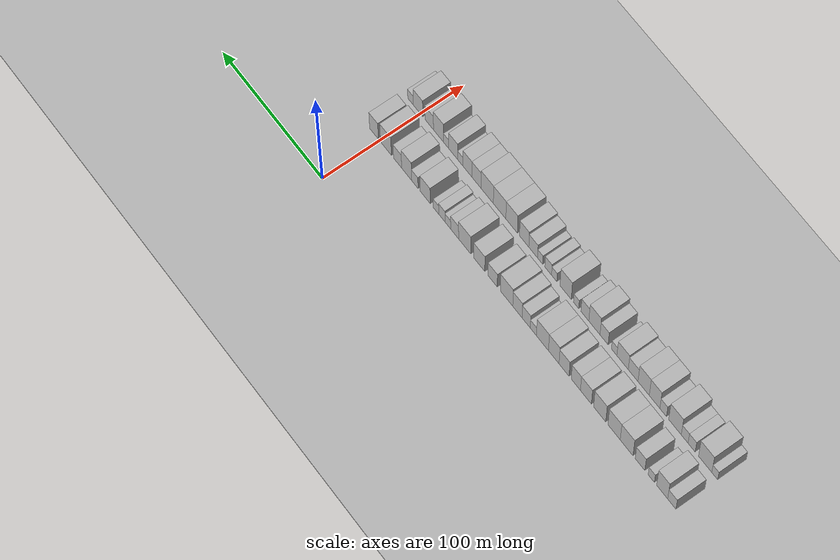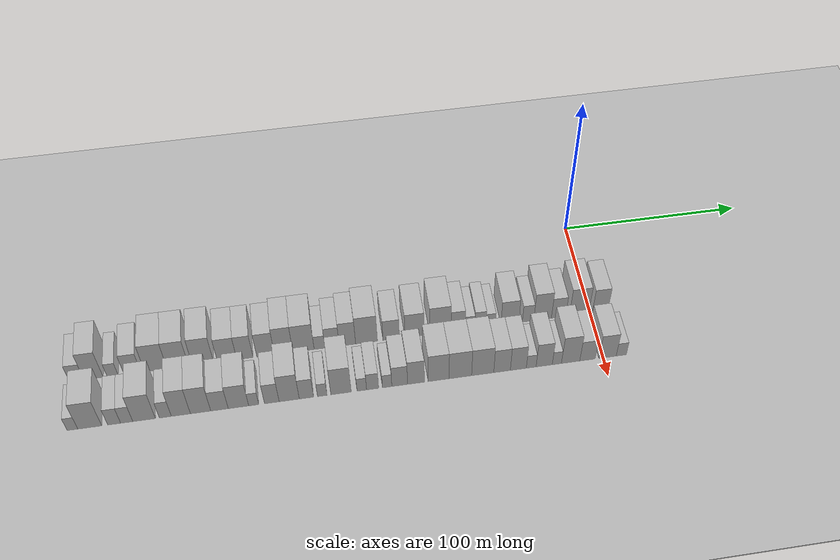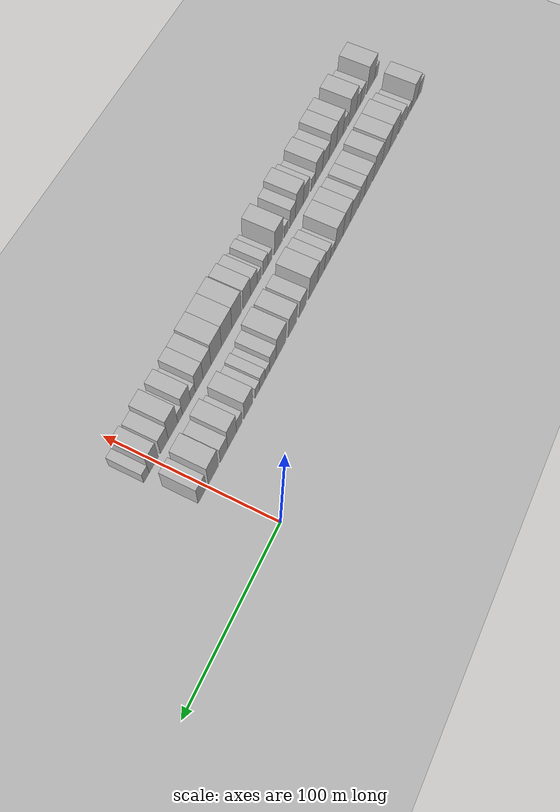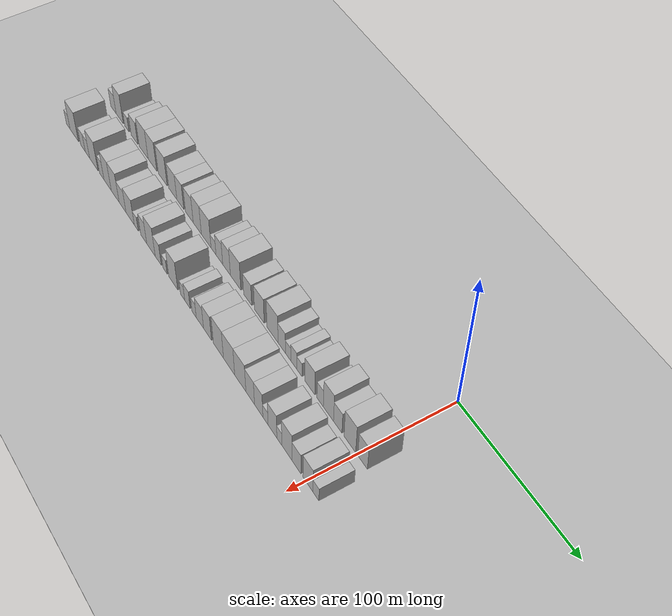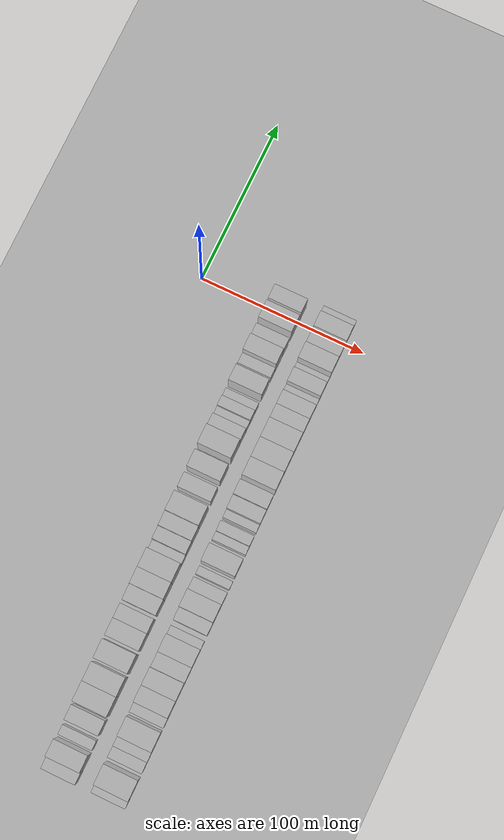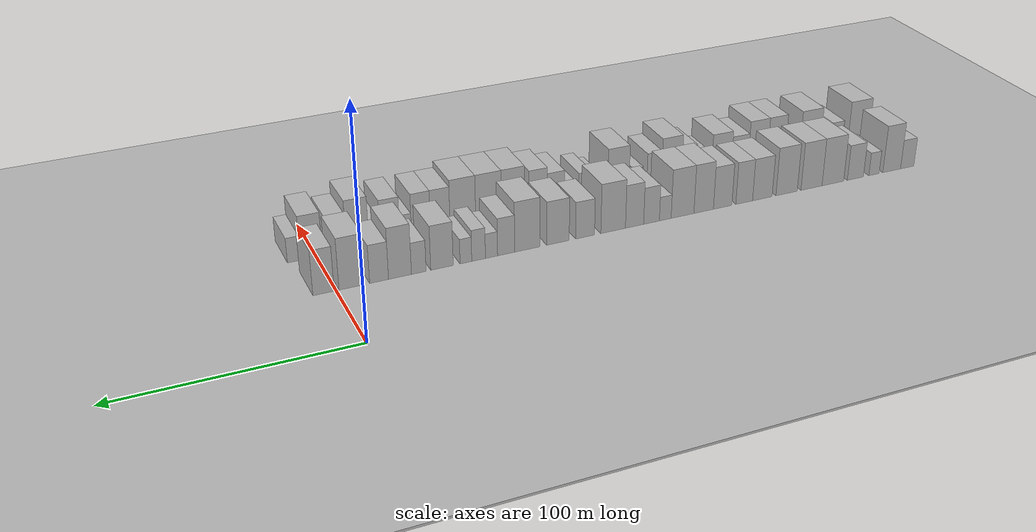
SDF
<sdf version="1.6">
 <world name="default">
  <include><name>ground_plane_1</name><uri>model://HANNAS_ground_plane</uri></include>
  <include>
   <name>ground_plane_2</name>
   <uri>model://HANNAS_ground_plane</uri>
   <pose>100 0 0  0 0 0</pose>
  </include>
  <model name="building_1">
   <static>1</static>
   <pose>50.0000 -274.2800 0 0.000000 0.000000 0.000000</pose>
   <link name="link">
    <pose>0 0 7.50 0 0 0</pose>
    <collision name="collision"><geometry><box><size>20.0000 7.4400 15.0000</size></box></geometry></collision>
    <visual name="visual">
     <cast_shadows>0</cast_shadows>
     <geometry><box><size>20.0000 7.4400 15.0000</size></box></geometry>
     <material>
      <script>
       <uri>model://HANNAS_wall/materials/scripts</uri>
       <uri>model://HANNAS_wall/materials/textures</uri>
       <name>vrc/HANNAS_wall</name>
      </script>
     </material>
    </visual>
   </link>
  </model>
  <model name="building_2">
   <static>1</static>
   <pose>50.0000 -265.6306 0 0.000000 0.000000 0.000000</pose>
   <link name="link">
    <pose>0 0 12.00 0 0 0</pose>
    <collision name="collision"><geometry><box><size>20.0000 9.8587 24.0000</size></box></geometry></collision>
    <visual name="visual">
     <cast_shadows>0</cast_shadows>
     <geometry><box><size>20.0000 9.8587 24.0000</size></box></geometry>
     <material>
      <script>
       <uri>model://HANNAS_wall/materials/scripts</uri>
       <uri>model://HANNAS_wall/materials/textures</uri>
       <name>vrc/HANNAS_wall</name>
      </script>
     </material>
    </visual>
   </link>
  </model>
  <model name="building_3">
   <static>1</static>
   <pose>50.0000 -255.8644 0 0.000000 0.000000 0.000000</pose>
   <link name="link">
    <pose>0 0 6.00 0 0 0</pose>
    <collision name="collision"><geometry><box><size>20.0000 5.6739 12.0000</size></box></geometry></collision>
    <visual name="visual">
     <cast_shadows>0</cast_shadows>
     <geometry><box><size>20.0000 5.6739 12.0000</size></box></geometry>
     <material>
      <script>
       <uri>model://HANNAS_wall/materials/scripts</uri>
       <uri>model://HANNAS_wall/materials/textures</uri>
       <name>vrc/HANNAS_wall</name>
      </script>
     </material>
    </visual>
   </link>
  </model>
  <model name="building_4">
   <static>1</static>
   <pose>50.0000 -245.6716 0 0.000000 0.000000 0.000000</pose>
   <link name="link">
    <pose>0 0 9.00 0 0 0</pose>
    <collision name="collision"><geometry><box><size>20.0000 8.7116 18.0000</size></box></geometry></collision>
    <visual name="visual">
     <cast_shadows>0</cast_shadows>
     <geometry><box><size>20.0000 8.7116 18.0000</size></box></geometry>
     <material>
      <script>
       <uri>model://HANNAS_wall/materials/scripts</uri>
       <uri>model://HANNAS_wall/materials/textures</uri>
       <name>vrc/HANNAS_wall</name>
      </script>
     </material>
    </visual>
   </link>
  </model>
  <model name="building_5">
   <static>1</static>
   <pose>50.0000 -233.5031 0 0.000000 0.000000 0.000000</pose>
   <link name="link">
    <pose>0 0 12.00 0 0 0</pose>
    <collision name="collision"><geometry><box><size>20.0000 11.6254 24.0000</size></box></geometry></collision>
    <visual name="visual">
     <cast_shadows>0</cast_shadows>
     <geometry><box><size>20.0000 11.6254 24.0000</size></box></geometry>
     <material>
      <script>
       <uri>model://HANNAS_wall/materials/scripts</uri>
       <uri>model://HANNAS_wall/materials/textures</uri>
       <name>vrc/HANNAS_wall</name>
      </script>
     </material>
    </visual>
   </link>
  </model>
  <model name="building_6">
   <static>1</static>
   <pose>50.0000 -222.1084 0 0.000000 0.000000 0.000000</pose>
   <link name="link">
    <pose>0 0 12.00 0 0 0</pose>
    <collision name="collision"><geometry><box><size>20.0000 11.1640 24.0000</size></box></geometry></collision>
    <visual name="visual">
     <cast_shadows>0</cast_shadows>
     <geometry><box><size>20.0000 11.1640 24.0000</size></box></geometry>
     <material>
      <script>
       <uri>model://HANNAS_wall/materials/scripts</uri>
       <uri>model://HANNAS_wall/materials/textures</uri>
       <name>vrc/HANNAS_wall</name>
      </script>
     </material>
    </visual>
   </link>
  </model>
  <model name="building_7">
   <static>1</static>
   <pose>50.0000 -208.9661 0 0.000000 0.000000 0.000000</pose>
   <link name="link">
    <pose>0 0 12.00 0 0 0</pose>
    <collision name="collision"><geometry><box><size>20.0000 11.1205 24.0000</size></box></geometry></collision>
    <visual name="visual">
     <cast_shadows>0</cast_shadows>
     <geometry><box><size>20.0000 11.1205 24.0000</size></box></geometry>
     <material>
      <script>
       <uri>model://HANNAS_wall/materials/scripts</uri>
       <uri>model://HANNAS_wall/materials/textures</uri>
       <name>vrc/HANNAS_wall</name>
      </script>
     </material>
    </visual>
   </link>
  </model>
  <model name="building_8">
   <static>1</static>
   <pose>50.0000 -196.3599 0 0.000000 0.000000 0.000000</pose>
   <link name="link">
    <pose>0 0 10.50 0 0 0</pose>
    <collision name="collision"><geometry><box><size>20.0000 10.0919 21.0000</size></box></geometry></collision>
    <visual name="visual">
     <cast_shadows>0</cast_shadows>
     <geometry><box><size>20.0000 10.0919 21.0000</size></box></geometry>
     <material>
      <script>
       <uri>model://HANNAS_wall/materials/scripts</uri>
       <uri>model://HANNAS_wall/materials/textures</uri>
       <name>vrc/HANNAS_wall</name>
      </script>
     </material>
    </visual>
   </link>
  </model>
  <model name="building_9">
   <static>1</static>
   <pose>50.0000 -187.0492 0 0.000000 0.000000 0.000000</pose>
   <link name="link">
    <pose>0 0 10.50 0 0 0</pose>
    <collision name="collision"><geometry><box><size>20.0000 8.5296 21.0000</size></box></geometry></collision>
    <visual name="visual">
     <cast_shadows>0</cast_shadows>
     <geometry><box><size>20.0000 8.5296 21.0000</size></box></geometry>
     <material>
      <script>
       <uri>model://HANNAS_wall/materials/scripts</uri>
       <uri>model://HANNAS_wall/materials/textures</uri>
       <name>vrc/HANNAS_wall</name>
      </script>
     </material>
    </visual>
   </link>
  </model>
  <model name="building_10">
   <static>1</static>
   <pose>50.0000 -176.1202 0 0.000000 0.000000 0.000000</pose>
   <link name="link">
    <pose>0 0 10.50 0 0 0</pose>
    <collision name="collision"><geometry><box><size>20.0000 9.3284 21.0000</size></box></geometry></collision>
    <visual name="visual">
     <cast_shadows>0</cast_shadows>
     <geometry><box><size>20.0000 9.3284 21.0000</size></box></geometry>
     <material>
      <script>
       <uri>model://HANNAS_wall/materials/scripts</uri>
       <uri>model://HANNAS_wall/materials/textures</uri>
       <name>vrc/HANNAS_wall</name>
      </script>
     </material>
    </visual>
   </link>
  </model>
  <model name="building_11">
   <static>1</static>
   <pose>50.0000 -166.5818 0 0.000000 0.000000 0.000000</pose>
   <link name="link">
    <pose>0 0 12.00 0 0 0</pose>
    <collision name="collision"><geometry><box><size>20.0000 9.7484 24.0000</size></box></geometry></collision>
    <visual name="visual">
     <cast_shadows>0</cast_shadows>
     <geometry><box><size>20.0000 9.7484 24.0000</size></box></geometry>
     <material>
      <script>
       <uri>model://HANNAS_wall/materials/scripts</uri>
       <uri>model://HANNAS_wall/materials/textures</uri>
       <name>vrc/HANNAS_wall</name>
      </script>
     </material>
    </visual>
   </link>
  </model>
  <model name="building_12">
   <static>1</static>
   <pose>50.0000 -156.0734 0 0.000000 0.000000 0.000000</pose>
   <link name="link">
    <pose>0 0 12.00 0 0 0</pose>
    <collision name="collision"><geometry><box><size>20.0000 11.2684 24.0000</size></box></geometry></collision>
    <visual name="visual">
     <cast_shadows>0</cast_shadows>
     <geometry><box><size>20.0000 11.2684 24.0000</size></box></geometry>
     <material>
      <script>
       <uri>model://HANNAS_wall/materials/scripts</uri>
       <uri>model://HANNAS_wall/materials/textures</uri>
       <name>vrc/HANNAS_wall</name>
      </script>
     </material>
    </visual>
   </link>
  </model>
  <model name="building_13">
   <static>1</static>
   <pose>50.0000 -147.5744 0 0.000000 0.000000 0.000000</pose>
   <link name="link">
    <pose>0 0 6.00 0 0 0</pose>
    <collision name="collision"><geometry><box><size>20.0000 5.7296 12.0000</size></box></geometry></collision>
    <visual name="visual">
     <cast_shadows>0</cast_shadows>
     <geometry><box><size>20.0000 5.7296 12.0000</size></box></geometry>
     <material>
      <script>
       <uri>model://HANNAS_wall/materials/scripts</uri>
       <uri>model://HANNAS_wall/materials/textures</uri>
       <name>vrc/HANNAS_wall</name>
      </script>
     </material>
    </visual>
   </link>
  </model>
  <model name="building_14">
   <static>1</static>
   <pose>50.0000 -140.8800 0 0.000000 0.000000 0.000000</pose>
   <link name="link">
    <pose>0 0 9.00 0 0 0</pose>
    <collision name="collision"><geometry><box><size>20.0000 7.6592 18.0000</size></box></geometry></collision>
    <visual name="visual">
     <cast_shadows>0</cast_shadows>
     <geometry><box><size>20.0000 7.6592 18.0000</size></box></geometry>
     <material>
      <script>
       <uri>model://HANNAS_wall/materials/scripts</uri>
       <uri>model://HANNAS_wall/materials/textures</uri>
       <name>vrc/HANNAS_wall</name>
      </script>
     </material>
    </visual>
   </link>
  </model>
  <model name="building_15">
   <static>1</static>
   <pose>50.0000 -132.6836 0 0.000000 0.000000 0.000000</pose>
   <link name="link">
    <pose>0 0 10.50 0 0 0</pose>
    <collision name="collision"><geometry><box><size>20.0000 8.7337 21.0000</size></box></geometry></collision>
    <visual name="visual">
     <cast_shadows>0</cast_shadows>
     <geometry><box><size>20.0000 8.7337 21.0000</size></box></geometry>
     <material>
      <script>
       <uri>model://HANNAS_wall/materials/scripts</uri>
       <uri>model://HANNAS_wall/materials/textures</uri>
       <name>vrc/HANNAS_wall</name>
      </script>
     </material>
    </visual>
   </link>
  </model>
  <model name="building_16">
   <static>1</static>
   <pose>50.0000 -122.4694 0 0.000000 0.000000 0.000000</pose>
   <link name="link">
    <pose>0 0 12.00 0 0 0</pose>
    <collision name="collision"><geometry><box><size>20.0000 11.6947 24.0000</size></box></geometry></collision>
    <visual name="visual">
     <cast_shadows>0</cast_shadows>
     <geometry><box><size>20.0000 11.6947 24.0000</size></box></geometry>
     <material>
      <script>
       <uri>model://HANNAS_wall/materials/scripts</uri>
       <uri>model://HANNAS_wall/materials/textures</uri>
       <name>vrc/HANNAS_wall</name>
      </script>
     </material>
    </visual>
   </link>
  </model>
  <model name="building_17">
   <static>1</static>
   <pose>50.0000 -109.2025 0 0.000000 0.000000 0.000000</pose>
   <link name="link">
    <pose>0 0 9.00 0 0 0</pose>
    <collision name="collision"><geometry><box><size>20.0000 8.8392 18.0000</size></box></geometry></collision>
    <visual name="visual">
     <cast_shadows>0</cast_shadows>
     <geometry><box><size>20.0000 8.8392 18.0000</size></box></geometry>
     <material>
      <script>
       <uri>model://HANNAS_wall/materials/scripts</uri>
       <uri>model://HANNAS_wall/materials/textures</uri>
       <name>vrc/HANNAS_wall</name>
      </script>
     </material>
    </visual>
   </link>
  </model>
  <model name="building_18">
   <static>1</static>
   <pose>50.0000 -96.5926 0 0.000000 0.000000 0.000000</pose>
   <link name="link">
    <pose>0 0 10.50 0 0 0</pose>
    <collision name="collision"><geometry><box><size>20.0000 10.3805 21.0000</size></box></geometry></collision>
    <visual name="visual">
     <cast_shadows>0</cast_shadows>
     <geometry><box><size>20.0000 10.3805 21.0000</size></box></geometry>
     <material>
      <script>
       <uri>model://HANNAS_wall/materials/scripts</uri>
       <uri>model://HANNAS_wall/materials/textures</uri>
       <name>vrc/HANNAS_wall</name>
      </script>
     </material>
    </visual>
   </link>
  </model>
  <model name="building_19">
   <static>1</static>
   <pose>50.0000 -82.6011 0 0.000000 0.000000 0.000000</pose>
   <link name="link">
    <pose>0 0 12.00 0 0 0</pose>
    <collision name="collision"><geometry><box><size>20.0000 11.6026 24.0000</size></box></geometry></collision>
    <visual name="visual">
     <cast_shadows>0</cast_shadows>
     <geometry><box><size>20.0000 11.6026 24.0000</size></box></geometry>
     <material>
      <script>
       <uri>model://HANNAS_wall/materials/scripts</uri>
       <uri>model://HANNAS_wall/materials/textures</uri>
       <name>vrc/HANNAS_wall</name>
      </script>
     </material>
    </visual>
   </link>
  </model>
  <model name="building_20">
   <static>1</static>
   <pose>50.0000 -72.9751 0 0.000000 0.000000 0.000000</pose>
   <link name="link">
    <pose>0 0 9.00 0 0 0</pose>
    <collision name="collision"><geometry><box><size>20.0000 7.6494 18.0000</size></box></geometry></collision>
    <visual name="visual">
     <cast_shadows>0</cast_shadows>
     <geometry><box><size>20.0000 7.6494 18.0000</size></box></geometry>
     <material>
      <script>
       <uri>model://HANNAS_wall/materials/scripts</uri>
       <uri>model://HANNAS_wall/materials/textures</uri>
       <name>vrc/HANNAS_wall</name>
      </script>
     </material>
    </visual>
   </link>
  </model>
  <model name="building_21">
   <static>1</static>
   <pose>50.0000 -66.4450 0 0.000000 0.000000 0.000000</pose>
   <link name="link">
    <pose>0 0 6.00 0 0 0</pose>
    <collision name="collision"><geometry><box><size>20.0000 5.4107 12.0000</size></box></geometry></collision>
    <visual name="visual">
     <cast_shadows>0</cast_shadows>
     <geometry><box><size>20.0000 5.4107 12.0000</size></box></geometry>
     <material>
      <script>
       <uri>model://HANNAS_wall/materials/scripts</uri>
       <uri>model://HANNAS_wall/materials/textures</uri>
       <name>vrc/HANNAS_wall</name>
      </script>
     </material>
    </visual>
   </link>
  </model>
  <model name="building_22">
   <static>1</static>
   <pose>50.0000 -60.7023 0 0.000000 0.000000 0.000000</pose>
   <link name="link">
    <pose>0 0 7.50 0 0 0</pose>
    <collision name="collision"><geometry><box><size>20.0000 6.0748 15.0000</size></box></geometry></collision>
    <visual name="visual">
     <cast_shadows>0</cast_shadows>
     <geometry><box><size>20.0000 6.0748 15.0000</size></box></geometry>
     <material>
      <script>
       <uri>model://HANNAS_wall/materials/scripts</uri>
       <uri>model://HANNAS_wall/materials/textures</uri>
       <name>vrc/HANNAS_wall</name>
      </script>
     </material>
    </visual>
   </link>
  </model>
  <model name="building_23">
   <static>1</static>
   <pose>50.0000 -55.1028 0 0.000000 0.000000 0.000000</pose>
   <link name="link">
    <pose>0 0 6.00 0 0 0</pose>
    <collision name="collision"><geometry><box><size>20.0000 5.1241 12.0000</size></box></geometry></collision>
    <visual name="visual">
     <cast_shadows>0</cast_shadows>
     <geometry><box><size>20.0000 5.1241 12.0000</size></box></geometry>
     <material>
      <script>
       <uri>model://HANNAS_wall/materials/scripts</uri>
       <uri>model://HANNAS_wall/materials/textures</uri>
       <name>vrc/HANNAS_wall</name>
      </script>
     </material>
    </visual>
   </link>
  </model>
  <model name="building_24">
   <static>1</static>
   <pose>50.0000 -44.6592 0 0.000000 0.000000 0.000000</pose>
   <link name="link">
    <pose>0 0 10.50 0 0 0</pose>
    <collision name="collision"><geometry><box><size>20.0000 9.7632 21.0000</size></box></geometry></collision>
    <visual name="visual">
     <cast_shadows>0</cast_shadows>
     <geometry><box><size>20.0000 9.7632 21.0000</size></box></geometry>
     <material>
      <script>
       <uri>model://HANNAS_wall/materials/scripts</uri>
       <uri>model://HANNAS_wall/materials/textures</uri>
       <name>vrc/HANNAS_wall</name>
      </script>
     </material>
    </visual>
   </link>
  </model>
  <model name="building_25">
   <static>1</static>
   <pose>50.0000 -34.6333 0 0.000000 0.000000 0.000000</pose>
   <link name="link">
    <pose>0 0 7.50 0 0 0</pose>
    <collision name="collision"><geometry><box><size>20.0000 6.2885 15.0000</size></box></geometry></collision>
    <visual name="visual">
     <cast_shadows>0</cast_shadows>
     <geometry><box><size>20.0000 6.2885 15.0000</size></box></geometry>
     <material>
      <script>
       <uri>model://HANNAS_wall/materials/scripts</uri>
       <uri>model://HANNAS_wall/materials/textures</uri>
       <name>vrc/HANNAS_wall</name>
      </script>
     </material>
    </visual>
   </link>
  </model>
  <model name="building_26">
   <static>1</static>
   <pose>50.0000 -26.6093 0 0.000000 0.000000 0.000000</pose>
   <link name="link">
    <pose>0 0 12.00 0 0 0</pose>
    <collision name="collision"><geometry><box><size>20.0000 9.7597 24.0000</size></box></geometry></collision>
    <visual name="visual">
     <cast_shadows>0</cast_shadows>
     <geometry><box><size>20.0000 9.7597 24.0000</size></box></geometry>
     <material>
      <script>
       <uri>model://HANNAS_wall/materials/scripts</uri>
       <uri>model://HANNAS_wall/materials/textures</uri>
       <name>vrc/HANNAS_wall</name>
      </script>
     </material>
    </visual>
   </link>
  </model>
  <model name="building_27">
   <static>1</static>
   <pose>50.0000 -17.7537 0 0.000000 0.000000 0.000000</pose>
   <link name="link">
    <pose>0 0 9.00 0 0 0</pose>
    <collision name="collision"><geometry><box><size>20.0000 7.9515 18.0000</size></box></geometry></collision>
    <visual name="visual">
     <cast_shadows>0</cast_shadows>
     <geometry><box><size>20.0000 7.9515 18.0000</size></box></geometry>
     <material>
      <script>
       <uri>model://HANNAS_wall/materials/scripts</uri>
       <uri>model://HANNAS_wall/materials/textures</uri>
       <name>vrc/HANNAS_wall</name>
      </script>
     </material>
    </visual>
   </link>
  </model>
  <model name="building_28">
   <static>1</static>
   <pose>50.0000 -6.4030 0 0.000000 0.000000 0.000000</pose>
   <link name="link">
    <pose>0 0 12.00 0 0 0</pose>
    <collision name="collision"><geometry><box><size>20.0000 10.7500 24.0000</size></box></geometry></collision>
    <visual name="visual">
     <cast_shadows>0</cast_shadows>
     <geometry><box><size>20.0000 10.7500 24.0000</size></box></geometry>
     <material>
      <script>
       <uri>model://HANNAS_wall/materials/scripts</uri>
       <uri>model://HANNAS_wall/materials/textures</uri>
       <name>vrc/HANNAS_wall</name>
      </script>
     </material>
    </visual>
   </link>
  </model>
  <model name="building_29">
   <static>1</static>
   <pose>50.0000 5.3258 0 0.000000 0.000000 0.000000</pose>
   <link name="link">
    <pose>0 0 10.50 0 0 0</pose>
    <collision name="collision"><geometry><box><size>20.0000 8.7075 21.0000</size></box></geometry></collision>
    <visual name="visual">
     <cast_shadows>0</cast_shadows>
     <geometry><box><size>20.0000 8.7075 21.0000</size></box></geometry>
     <material>
      <script>
       <uri>model://HANNAS_wall/materials/scripts</uri>
       <uri>model://HANNAS_wall/materials/textures</uri>
       <name>vrc/HANNAS_wall</name>
      </script>
     </material>
    </visual>
   </link>
  </model>
  <model name="building_62">
   <static>1</static>
   <pose>79.0000 -275.3712 0 0.000000 0.000000 0.000000</pose>
   <link name="link">
    <pose>0 0 6.00 0 0 0</pose>
    <collision name="collision"><geometry><box><size>20.0000 5.2576 12.0000</size></box></geometry></collision>
    <visual name="visual">
     <cast_shadows>0</cast_shadows>
     <geometry><box><size>20.0000 5.2576 12.0000</size></box></geometry>
     <material>
      <script>
       <uri>model://HANNAS_wall/materials/scripts</uri>
       <uri>model://HANNAS_wall/materials/textures</uri>
       <name>vrc/HANNAS_wall</name>
      </script>
     </material>
    </visual>
   </link>
  </model>
  <model name="building_63">
   <static>1</static>
   <pose>79.0000 -266.7910 0 0.000000 0.000000 0.000000</pose>
   <link name="link">
    <pose>0 0 12.00 0 0 0</pose>
    <collision name="collision"><geometry><box><size>20.0000 11.9027 24.0000</size></box></geometry></collision>
    <visual name="visual">
     <cast_shadows>0</cast_shadows>
     <geometry><box><size>20.0000 11.9027 24.0000</size></box></geometry>
     <material>
      <script>
       <uri>model://HANNAS_wall/materials/scripts</uri>
       <uri>model://HANNAS_wall/materials/textures</uri>
       <name>vrc/HANNAS_wall</name>
      </script>
     </material>
    </visual>
   </link>
  </model>
  <model name="building_64">
   <static>1</static>
   <pose>79.0000 -254.6164 0 0.000000 0.000000 0.000000</pose>
   <link name="link">
    <pose>0 0 7.50 0 0 0</pose>
    <collision name="collision"><geometry><box><size>20.0000 6.4466 15.0000</size></box></geometry></collision>
    <visual name="visual">
     <cast_shadows>0</cast_shadows>
     <geometry><box><size>20.0000 6.4466 15.0000</size></box></geometry>
     <material>
      <script>
       <uri>model://HANNAS_wall/materials/scripts</uri>
       <uri>model://HANNAS_wall/materials/textures</uri>
       <name>vrc/HANNAS_wall</name>
      </script>
     </material>
    </visual>
   </link>
  </model>
  <model name="building_65">
   <static>1</static>
   <pose>79.0000 -248.3477 0 0.000000 0.000000 0.000000</pose>
   <link name="link">
    <pose>0 0 7.50 0 0 0</pose>
    <collision name="collision"><geometry><box><size>20.0000 6.0907 15.0000</size></box></geometry></collision>
    <visual name="visual">
     <cast_shadows>0</cast_shadows>
     <geometry><box><size>20.0000 6.0907 15.0000</size></box></geometry>
     <material>
      <script>
       <uri>model://HANNAS_wall/materials/scripts</uri>
       <uri>model://HANNAS_wall/materials/textures</uri>
       <name>vrc/HANNAS_wall</name>
      </script>
     </material>
    </visual>
   </link>
  </model>
  <model name="building_66">
   <static>1</static>
   <pose>79.0000 -239.6394 0 0.000000 0.000000 0.000000</pose>
   <link name="link">
    <pose>0 0 12.00 0 0 0</pose>
    <collision name="collision"><geometry><box><size>20.0000 11.3260 24.0000</size></box></geometry></collision>
    <visual name="visual">
     <cast_shadows>0</cast_shadows>
     <geometry><box><size>20.0000 11.3260 24.0000</size></box></geometry>
     <material>
      <script>
       <uri>model://HANNAS_wall/materials/scripts</uri>
       <uri>model://HANNAS_wall/materials/textures</uri>
       <name>vrc/HANNAS_wall</name>
      </script>
     </material>
    </visual>
   </link>
  </model>
  <model name="building_67">
   <static>1</static>
   <pose>79.0000 -228.9631 0 0.000000 0.000000 0.000000</pose>
   <link name="link">
    <pose>0 0 7.50 0 0 0</pose>
    <collision name="collision"><geometry><box><size>20.0000 6.0266 15.0000</size></box></geometry></collision>
    <visual name="visual">
     <cast_shadows>0</cast_shadows>
     <geometry><box><size>20.0000 6.0266 15.0000</size></box></geometry>
     <material>
      <script>
       <uri>model://HANNAS_wall/materials/scripts</uri>
       <uri>model://HANNAS_wall/materials/textures</uri>
       <name>vrc/HANNAS_wall</name>
      </script>
     </material>
    </visual>
   </link>
  </model>
  <model name="building_68">
   <static>1</static>
   <pose>79.0000 -221.1383 0 0.000000 0.000000 0.000000</pose>
   <link name="link">
    <pose>0 0 12.00 0 0 0</pose>
    <collision name="collision"><geometry><box><size>20.0000 9.6230 24.0000</size></box></geometry></collision>
    <visual name="visual">
     <cast_shadows>0</cast_shadows>
     <geometry><box><size>20.0000 9.6230 24.0000</size></box></geometry>
     <material>
      <script>
       <uri>model://HANNAS_wall/materials/scripts</uri>
       <uri>model://HANNAS_wall/materials/textures</uri>
       <name>vrc/HANNAS_wall</name>
      </script>
     </material>
    </visual>
   </link>
  </model>
  <model name="building_69">
   <static>1</static>
   <pose>79.0000 -211.1753 0 0.000000 0.000000 0.000000</pose>
   <link name="link">
    <pose>0 0 12.00 0 0 0</pose>
    <collision name="collision"><geometry><box><size>20.0000 10.3030 24.0000</size></box></geometry></collision>
    <visual name="visual">
     <cast_shadows>0</cast_shadows>
     <geometry><box><size>20.0000 10.3030 24.0000</size></box></geometry>
     <material>
      <script>
       <uri>model://HANNAS_wall/materials/scripts</uri>
       <uri>model://HANNAS_wall/materials/textures</uri>
       <name>vrc/HANNAS_wall</name>
      </script>
     </material>
    </visual>
   </link>
  </model>
  <model name="building_70">
   <static>1</static>
   <pose>79.0000 -201.5853 0 0.000000 0.000000 0.000000</pose>
   <link name="link">
    <pose>0 0 9.00 0 0 0</pose>
    <collision name="collision"><geometry><box><size>20.0000 8.8771 18.0000</size></box></geometry></collision>
    <visual name="visual">
     <cast_shadows>0</cast_shadows>
     <geometry><box><size>20.0000 8.8771 18.0000</size></box></geometry>
     <material>
      <script>
       <uri>model://HANNAS_wall/materials/scripts</uri>
       <uri>model://HANNAS_wall/materials/textures</uri>
       <name>vrc/HANNAS_wall</name>
      </script>
     </material>
    </visual>
   </link>
  </model>
  <model name="building_71">
   <static>1</static>
   <pose>79.0000 -191.9220 0 0.000000 0.000000 0.000000</pose>
   <link name="link">
    <pose>0 0 10.50 0 0 0</pose>
    <collision name="collision"><geometry><box><size>20.0000 10.4494 21.0000</size></box></geometry></collision>
    <visual name="visual">
     <cast_shadows>0</cast_shadows>
     <geometry><box><size>20.0000 10.4494 21.0000</size></box></geometry>
     <material>
      <script>
       <uri>model://HANNAS_wall/materials/scripts</uri>
       <uri>model://HANNAS_wall/materials/textures</uri>
       <name>vrc/HANNAS_wall</name>
      </script>
     </material>
    </visual>
   </link>
  </model>
  <model name="building_72">
   <static>1</static>
   <pose>79.0000 -184.1596 0 0.000000 0.000000 0.000000</pose>
   <link name="link">
    <pose>0 0 6.00 0 0 0</pose>
    <collision name="collision"><geometry><box><size>20.0000 5.0755 12.0000</size></box></geometry></collision>
    <visual name="visual">
     <cast_shadows>0</cast_shadows>
     <geometry><box><size>20.0000 5.0755 12.0000</size></box></geometry>
     <material>
      <script>
       <uri>model://HANNAS_wall/materials/scripts</uri>
       <uri>model://HANNAS_wall/materials/textures</uri>
       <name>vrc/HANNAS_wall</name>
      </script>
     </material>
    </visual>
   </link>
  </model>
  <model name="building_73">
   <static>1</static>
   <pose>79.0000 -174.8725 0 0.000000 0.000000 0.000000</pose>
   <link name="link">
    <pose>0 0 9.00 0 0 0</pose>
    <collision name="collision"><geometry><box><size>20.0000 7.4987 18.0000</size></box></geometry></collision>
    <visual name="visual">
     <cast_shadows>0</cast_shadows>
     <geometry><box><size>20.0000 7.4987 18.0000</size></box></geometry>
     <material>
      <script>
       <uri>model://HANNAS_wall/materials/scripts</uri>
       <uri>model://HANNAS_wall/materials/textures</uri>
       <name>vrc/HANNAS_wall</name>
      </script>
     </material>
    </visual>
   </link>
  </model>
  <model name="building_74">
   <static>1</static>
   <pose>79.0000 -165.9466 0 0.000000 0.000000 0.000000</pose>
   <link name="link">
    <pose>0 0 12.00 0 0 0</pose>
    <collision name="collision"><geometry><box><size>20.0000 10.3530 24.0000</size></box></geometry></collision>
    <visual name="visual">
     <cast_shadows>0</cast_shadows>
     <geometry><box><size>20.0000 10.3530 24.0000</size></box></geometry>
     <material>
      <script>
       <uri>model://HANNAS_wall/materials/scripts</uri>
       <uri>model://HANNAS_wall/materials/textures</uri>
       <name>vrc/HANNAS_wall</name>
      </script>
     </material>
    </visual>
   </link>
  </model>
  <model name="building_75">
   <static>1</static>
   <pose>79.0000 -157.0801 0 0.000000 0.000000 0.000000</pose>
   <link name="link">
    <pose>0 0 9.00 0 0 0</pose>
    <collision name="collision"><geometry><box><size>20.0000 7.3802 18.0000</size></box></geometry></collision>
    <visual name="visual">
     <cast_shadows>0</cast_shadows>
     <geometry><box><size>20.0000 7.3802 18.0000</size></box></geometry>
     <material>
      <script>
       <uri>model://HANNAS_wall/materials/scripts</uri>
       <uri>model://HANNAS_wall/materials/textures</uri>
       <name>vrc/HANNAS_wall</name>
      </script>
     </material>
    </visual>
   </link>
  </model>
  <model name="building_76">
   <static>1</static>
   <pose>79.0000 -148.9262 0 0.000000 0.000000 0.000000</pose>
   <link name="link">
    <pose>0 0 6.00 0 0 0</pose>
    <collision name="collision"><geometry><box><size>20.0000 4.9275 12.0000</size></box></geometry></collision>
    <visual name="visual">
     <cast_shadows>0</cast_shadows>
     <geometry><box><size>20.0000 4.9275 12.0000</size></box></geometry>
     <material>
      <script>
       <uri>model://HANNAS_wall/materials/scripts</uri>
       <uri>model://HANNAS_wall/materials/textures</uri>
       <name>vrc/HANNAS_wall</name>
      </script>
     </material>
    </visual>
   </link>
  </model>
  <model name="building_77">
   <static>1</static>
   <pose>79.0000 -139.1802 0 0.000000 0.000000 0.000000</pose>
   <link name="link">
    <pose>0 0 12.00 0 0 0</pose>
    <collision name="collision"><geometry><box><size>20.0000 10.5644 24.0000</size></box></geometry></collision>
    <visual name="visual">
     <cast_shadows>0</cast_shadows>
     <geometry><box><size>20.0000 10.5644 24.0000</size></box></geometry>
     <material>
      <script>
       <uri>model://HANNAS_wall/materials/scripts</uri>
       <uri>model://HANNAS_wall/materials/textures</uri>
       <name>vrc/HANNAS_wall</name>
      </script>
     </material>
    </visual>
   </link>
  </model>
  <model name="building_78">
   <static>1</static>
   <pose>79.0000 -128.4122 0 0.000000 0.000000 0.000000</pose>
   <link name="link">
    <pose>0 0 6.00 0 0 0</pose>
    <collision name="collision"><geometry><box><size>20.0000 4.9716 12.0000</size></box></geometry></collision>
    <visual name="visual">
     <cast_shadows>0</cast_shadows>
     <geometry><box><size>20.0000 4.9716 12.0000</size></box></geometry>
     <material>
      <script>
       <uri>model://HANNAS_wall/materials/scripts</uri>
       <uri>model://HANNAS_wall/materials/textures</uri>
       <name>vrc/HANNAS_wall</name>
      </script>
     </material>
    </visual>
   </link>
  </model>
  <model name="building_79">
   <static>1</static>
   <pose>79.0000 -122.7783 0 0.000000 0.000000 0.000000</pose>
   <link name="link">
    <pose>0 0 7.50 0 0 0</pose>
    <collision name="collision"><geometry><box><size>20.0000 6.2963 15.0000</size></box></geometry></collision>
    <visual name="visual">
     <cast_shadows>0</cast_shadows>
     <geometry><box><size>20.0000 6.2963 15.0000</size></box></geometry>
     <material>
      <script>
       <uri>model://HANNAS_wall/materials/scripts</uri>
       <uri>model://HANNAS_wall/materials/textures</uri>
       <name>vrc/HANNAS_wall</name>
      </script>
     </material>
    </visual>
   </link>
  </model>
  <model name="building_80">
   <static>1</static>
   <pose>79.0000 -115.1872 0 0.000000 0.000000 0.000000</pose>
   <link name="link">
    <pose>0 0 6.00 0 0 0</pose>
    <collision name="collision"><geometry><box><size>20.0000 4.8861 12.0000</size></box></geometry></collision>
    <visual name="visual">
     <cast_shadows>0</cast_shadows>
     <geometry><box><size>20.0000 4.8861 12.0000</size></box></geometry>
     <material>
      <script>
       <uri>model://HANNAS_wall/materials/scripts</uri>
       <uri>model://HANNAS_wall/materials/textures</uri>
       <name>vrc/HANNAS_wall</name>
      </script>
     </material>
    </visual>
   </link>
  </model>
  <model name="building_81">
   <static>1</static>
   <pose>79.0000 -108.6356 0 0.000000 0.000000 0.000000</pose>
   <link name="link">
    <pose>0 0 9.00 0 0 0</pose>
    <collision name="collision"><geometry><box><size>20.0000 8.2170 18.0000</size></box></geometry></collision>
    <visual name="visual">
     <cast_shadows>0</cast_shadows>
     <geometry><box><size>20.0000 8.2170 18.0000</size></box></geometry>
     <material>
      <script>
       <uri>model://HANNAS_wall/materials/scripts</uri>
       <uri>model://HANNAS_wall/materials/textures</uri>
       <name>vrc/HANNAS_wall</name>
      </script>
     </material>
    </visual>
   </link>
  </model>
  <model name="building_82">
   <static>1</static>
   <pose>79.0000 -100.1014 0 0.000000 0.000000 0.000000</pose>
   <link name="link">
    <pose>0 0 10.50 0 0 0</pose>
    <collision name="collision"><geometry><box><size>20.0000 8.8514 21.0000</size></box></geometry></collision>
    <visual name="visual">
     <cast_shadows>0</cast_shadows>
     <geometry><box><size>20.0000 8.8514 21.0000</size></box></geometry>
     <material>
      <script>
       <uri>model://HANNAS_wall/materials/scripts</uri>
       <uri>model://HANNAS_wall/materials/textures</uri>
       <name>vrc/HANNAS_wall</name>
      </script>
     </material>
    </visual>
   </link>
  </model>
  <model name="building_83">
   <static>1</static>
   <pose>79.0000 -88.1874 0 0.000000 0.000000 0.000000</pose>
   <link name="link">
    <pose>0 0 12.00 0 0 0</pose>
    <collision name="collision"><geometry><box><size>20.0000 10.9766 24.0000</size></box></geometry></collision>
    <visual name="visual">
     <cast_shadows>0</cast_shadows>
     <geometry><box><size>20.0000 10.9766 24.0000</size></box></geometry>
     <material>
      <script>
       <uri>model://HANNAS_wall/materials/scripts</uri>
       <uri>model://HANNAS_wall/materials/textures</uri>
       <name>vrc/HANNAS_wall</name>
      </script>
     </material>
    </visual>
   </link>
  </model>
  <model name="building_84">
   <static>1</static>
   <pose>79.0000 -76.7188 0 0.000000 0.000000 0.000000</pose>
   <link name="link">
    <pose>0 0 12.00 0 0 0</pose>
    <collision name="collision"><geometry><box><size>20.0000 11.9605 24.0000</size></box></geometry></collision>
    <visual name="visual">
     <cast_shadows>0</cast_shadows>
     <geometry><box><size>20.0000 11.9605 24.0000</size></box></geometry>
     <material>
      <script>
       <uri>model://HANNAS_wall/materials/scripts</uri>
       <uri>model://HANNAS_wall/materials/textures</uri>
       <name>vrc/HANNAS_wall</name>
      </script>
     </material>
    </visual>
   </link>
  </model>
  <model name="building_85">
   <static>1</static>
   <pose>79.0000 -64.8581 0 0.000000 0.000000 0.000000</pose>
   <link name="link">
    <pose>0 0 12.00 0 0 0</pose>
    <collision name="collision"><geometry><box><size>20.0000 11.7610 24.0000</size></box></geometry></collision>
    <visual name="visual">
     <cast_shadows>0</cast_shadows>
     <geometry><box><size>20.0000 11.7610 24.0000</size></box></geometry>
     <material>
      <script>
       <uri>model://HANNAS_wall/materials/scripts</uri>
       <uri>model://HANNAS_wall/materials/textures</uri>
       <name>vrc/HANNAS_wall</name>
      </script>
     </material>
    </visual>
   </link>
  </model>
  <model name="building_86">
   <static>1</static>
   <pose>79.0000 -54.5589 0 0.000000 0.000000 0.000000</pose>
   <link name="link">
    <pose>0 0 10.50 0 0 0</pose>
    <collision name="collision"><geometry><box><size>20.0000 8.8374 21.0000</size></box></geometry></collision>
    <visual name="visual">
     <cast_shadows>0</cast_shadows>
     <geometry><box><size>20.0000 8.8374 21.0000</size></box></geometry>
     <material>
      <script>
       <uri>model://HANNAS_wall/materials/scripts</uri>
       <uri>model://HANNAS_wall/materials/textures</uri>
       <name>vrc/HANNAS_wall</name>
      </script>
     </material>
    </visual>
   </link>
  </model>
  <model name="building_87">
   <static>1</static>
   <pose>79.0000 -45.8797 0 0.000000 0.000000 0.000000</pose>
   <link name="link">
    <pose>0 0 10.50 0 0 0</pose>
    <collision name="collision"><geometry><box><size>20.0000 8.5209 21.0000</size></box></geometry></collision>
    <visual name="visual">
     <cast_shadows>0</cast_shadows>
     <geometry><box><size>20.0000 8.5209 21.0000</size></box></geometry>
     <material>
      <script>
       <uri>model://HANNAS_wall/materials/scripts</uri>
       <uri>model://HANNAS_wall/materials/textures</uri>
       <name>vrc/HANNAS_wall</name>
      </script>
     </material>
    </visual>
   </link>
  </model>
  <model name="building_88">
   <static>1</static>
   <pose>79.0000 -39.0088 0 0.000000 0.000000 0.000000</pose>
   <link name="link">
    <pose>0 0 6.00 0 0 0</pose>
    <collision name="collision"><geometry><box><size>20.0000 5.2211 12.0000</size></box></geometry></collision>
    <visual name="visual">
     <cast_shadows>0</cast_shadows>
     <geometry><box><size>20.0000 5.2211 12.0000</size></box></geometry>
     <material>
      <script>
       <uri>model://HANNAS_wall/materials/scripts</uri>
       <uri>model://HANNAS_wall/materials/textures</uri>
       <name>vrc/HANNAS_wall</name>
      </script>
     </material>
    </visual>
   </link>
  </model>
  <model name="building_89">
   <static>1</static>
   <pose>79.0000 -32.0551 0 0.000000 0.000000 0.000000</pose>
   <link name="link">
    <pose>0 0 10.50 0 0 0</pose>
    <collision name="collision"><geometry><box><size>20.0000 8.6862 21.0000</size></box></geometry></collision>
    <visual name="visual">
     <cast_shadows>0</cast_shadows>
     <geometry><box><size>20.0000 8.6862 21.0000</size></box></geometry>
     <material>
      <script>
       <uri>model://HANNAS_wall/materials/scripts</uri>
       <uri>model://HANNAS_wall/materials/textures</uri>
       <name>vrc/HANNAS_wall</name>
      </script>
     </material>
    </visual>
   </link>
  </model>
  <model name="building_90">
   <static>1</static>
   <pose>79.0000 -25.2470 0 0.000000 0.000000 0.000000</pose>
   <link name="link">
    <pose>0 0 6.00 0 0 0</pose>
    <collision name="collision"><geometry><box><size>20.0000 4.9300 12.0000</size></box></geometry></collision>
    <visual name="visual">
     <cast_shadows>0</cast_shadows>
     <geometry><box><size>20.0000 4.9300 12.0000</size></box></geometry>
     <material>
      <script>
       <uri>model://HANNAS_wall/materials/scripts</uri>
       <uri>model://HANNAS_wall/materials/textures</uri>
       <name>vrc/HANNAS_wall</name>
      </script>
     </material>
    </visual>
   </link>
  </model>
  <model name="building_91">
   <static>1</static>
   <pose>79.0000 -17.8389 0 0.000000 0.000000 0.000000</pose>
   <link name="link">
    <pose>0 0 12.00 0 0 0</pose>
    <collision name="collision"><geometry><box><size>20.0000 9.8862 24.0000</size></box></geometry></collision>
    <visual name="visual">
     <cast_shadows>0</cast_shadows>
     <geometry><box><size>20.0000 9.8862 24.0000</size></box></geometry>
     <material>
      <script>
       <uri>model://HANNAS_wall/materials/scripts</uri>
       <uri>model://HANNAS_wall/materials/textures</uri>
       <name>vrc/HANNAS_wall</name>
      </script>
     </material>
    </visual>
   </link>
  </model>
  <model name="building_92">
   <static>1</static>
   <pose>79.0000 -8.7081 0 0.000000 0.000000 0.000000</pose>
   <link name="link">
    <pose>0 0 9.00 0 0 0</pose>
    <collision name="collision"><geometry><box><size>20.0000 8.3756 18.0000</size></box></geometry></collision>
    <visual name="visual">
     <cast_shadows>0</cast_shadows>
     <geometry><box><size>20.0000 8.3756 18.0000</size></box></geometry>
     <material>
      <script>
       <uri>model://HANNAS_wall/materials/scripts</uri>
       <uri>model://HANNAS_wall/materials/textures</uri>
       <name>vrc/HANNAS_wall</name>
      </script>
     </material>
    </visual>
   </link>
  </model>
  <model name="building_93">
   <static>1</static>
   <pose>79.0000 2.1678 0 0.000000 0.000000 0.000000</pose>
   <link name="link">
    <pose>0 0 10.50 0 0 0</pose>
    <collision name="collision"><geometry><box><size>20.0000 9.3761 21.0000</size></box></geometry></collision>
    <visual name="visual">
     <cast_shadows>0</cast_shadows>
     <geometry><box><size>20.0000 9.3761 21.0000</size></box></geometry>
     <material>
      <script>
       <uri>model://HANNAS_wall/materials/scripts</uri>
       <uri>model://HANNAS_wall/materials/textures</uri>
       <name>vrc/HANNAS_wall</name>
      </script>
     </material>
    </visual>
   </link>
  </model>
  <model name="building_94">
   <static>1</static>
   <pose>79.0000 9.6142 0 0.000000 0.000000 0.000000</pose>
   <link name="link">
    <pose>0 0 6.00 0 0 0</pose>
    <collision name="collision"><geometry><box><size>20.0000 5.5166 12.0000</size></box></geometry></collision>
    <visual name="visual">
     <cast_shadows>0</cast_shadows>
     <geometry><box><size>20.0000 5.5166 12.0000</size></box></geometry>
     <material>
      <script>
       <uri>model://HANNAS_wall/materials/scripts</uri>
       <uri>model://HANNAS_wall/materials/textures</uri>
       <name>vrc/HANNAS_wall</name>
      </script>
     </material>
    </visual>
   </link>
  </model>
 </world>
</sdf>
